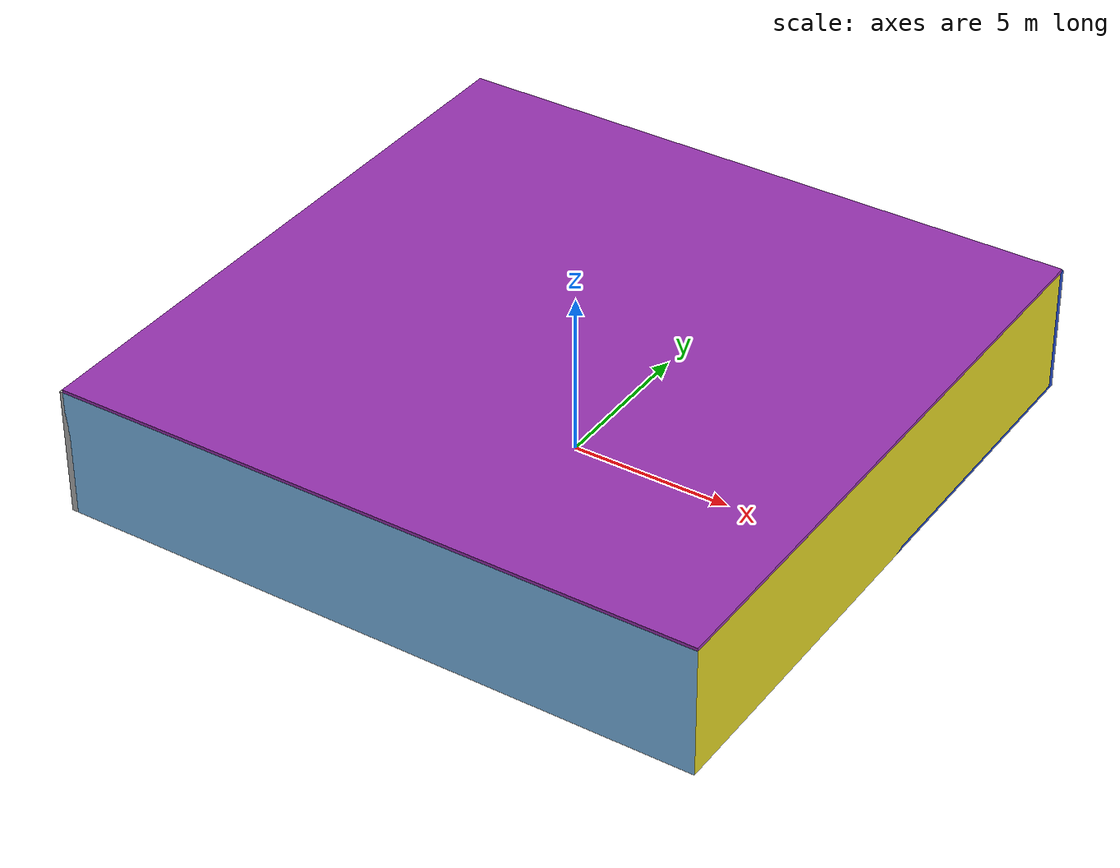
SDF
<sdf version="1.4">
 <world name="default">
  <physics type="ode">
   <max_step_size>0.001</max_step_size>
   <real_time_factor>1</real_time_factor>
   <real_time_update_rate>1000</real_time_update_rate>
   <gravity>0 0 -9.8</gravity>
  </physics>
  <scene><ambient>0.4 0.4 0.4 1</ambient><background>0.7 0.7 0.7 1</background><shadows>1</shadows></scene>
  <model name="Surrounding">
   <static>1</static>
   <link name="Ceiling">
    <collision name="Ceiling_Collision"><geometry><box><size>20 20 0.1</size></box></geometry></collision>
    <visual name="Ceiling_Visual">
     <geometry><box><size>20 20 0.1</size></box></geometry>
     <material>
      <script><uri>file://media/materials/scripts/gazebo.material</uri><name>Gazebo/Purple</name></script>
     </material>
    </visual>
    <pose>0 0 4.05 0 0 0</pose>
   </link>
   <link name="Wall_South">
    <collision name="Wall_South_Collision">
     <geometry><box><size>20 0 4</size></box></geometry>
     <pose>0 0 2 0 -0 0</pose>
    </collision>
    <visual name="Wall_South_Visual">
     <pose>0 0 2 0 -0 0</pose>
     <geometry><box><size>20 0 4</size></box></geometry>
     <material>
      <script><uri>file://media/materials/scripts/gazebo.material</uri><name>Gazebo/SkyBlue</name></script>
     </material>
    </visual>
    <velocity_decay><linear>0</linear><angular>0</angular></velocity_decay>
    <pose>0 -10 0 0 -0 0</pose>
   </link>
   <link name="Wall_East">
    <collision name="Wall_21_Collision">
     <geometry><box><size>20 0 4</size></box></geometry>
     <pose>0 0 2 0 -0 0</pose>
    </collision>
    <visual name="Wall_21_Visual">
     <pose>0 0 2 0 -0 0</pose>
     <geometry><box><size>20 0 4</size></box></geometry>
     <material>
      <script><uri>file://media/materials/scripts/gazebo.material</uri><name>Gazebo/Yellow</name></script>
     </material>
    </visual>
    <velocity_decay><linear>0</linear><angular>0</angular></velocity_decay>
    <pose>10 0 0 0 -0 1.5708</pose>
   </link>
   <link name="Wall_North">
    <collision name="Wall_22_Collision">
     <geometry><box><size>20 0.2 4</size></box></geometry>
     <pose>0 0 2 0 -0 0</pose>
    </collision>
    <visual name="Wall_22_Visual">
     <pose>0 0 2 0 -0 0</pose>
     <geometry><box><size>20 0.2 4</size></box></geometry>
     <material>
      <script><uri>file://media/materials/scripts/gazebo.material</uri><name>Gazebo/BlueLaser</name></script>
     </material>
    </visual>
    <velocity_decay><linear>0</linear><angular>0</angular></velocity_decay>
    <pose>0 10 0 0 -0 0</pose>
   </link>
   <link name="Wall_West">
    <collision name="Wall_23_Collision">
     <geometry><box><size>20 0.2 4</size></box></geometry>
     <pose>0 0 2 0 -0 0</pose>
    </collision>
    <visual name="Wall_23_Visual">
     <pose>0 0 2 0 -0 0</pose>
     <geometry><box><size>20 0.2 4</size></box></geometry>
     <material>
      <script><uri>file://media/materials/scripts/gazebo.material</uri><name>Gazebo/LightOn</name></script>
     </material>
    </visual>
    <velocity_decay><linear>0</linear><angular>0</angular></velocity_decay>
    <pose>-10 0 0 0 0 -1.5708</pose>
   </link>
   <link name="Ground_link">
    <collision name="collision">
     <pose>0 0 .05 0 -0 0</pose>
     <geometry><box><size>20 20 0.1</size></box></geometry>
    </collision>
    <visual name="visual">
     <pose>0 0 .05 0 -0 0</pose>
     <geometry><box><size>20 20 0.1</size></box></geometry>
     <material>
      <script><uri>file://media/materials/scripts/gazebo.material</uri><name>Gazebo/BlueLaser</name></script>
     </material>
    </visual>
   </link>
   <static>1</static>
  </model>
  <spherical_coordinates>
   <surface_model>EARTH_WGS84</surface_model>
   <latitude_deg>0</latitude_deg>
   <longitude_deg>0</longitude_deg>
   <elevation>0</elevation>
   <heading_deg>0</heading_deg>
  </spherical_coordinates>
  <light name="lightball_0" type="diffuse">
   <diffuse>0.8 0.8 0.8 1</diffuse>
   <specular>0.2 0.2 0.2 1</specular>
   <attenuation>
    <range>100</range>
    <constant>0.7</constant>
    <linear>0.01</linear>
    <quadratic>0.001</quadratic>
   </attenuation>
   <direction>-0.5 0.1 -0.9</direction>
   <pose>-2.87368865881 2.91507440798 1.59262430128 0 0 0</pose>
  </light>
  <light name="lightball_1" type="diffuse">
   <diffuse>0.8 0.8 0.8 1</diffuse>
   <specular>0.2 0.2 0.2 1</specular>
   <attenuation>
    <range>100</range>
    <constant>0.7</constant>
    <linear>0.01</linear>
    <quadratic>0.001</quadratic>
   </attenuation>
   <direction>-0.5 0.1 -0.9</direction>
   <pose>8.00006451938 -8.56302346824 3.84250607224 0 0 0</pose>
  </light>
  <light name="lightball_2" type="diffuse">
   <diffuse>0.8 0.8 0.8 1</diffuse>
   <specular>0.2 0.2 0.2 1</specular>
   <attenuation>
    <range>100</range>
    <constant>0.7</constant>
    <linear>0.01</linear>
    <quadratic>0.001</quadratic>
   </attenuation>
   <direction>-0.5 0.1 -0.9</direction>
   <pose>-7.8350880898 1.22687457758 1.59131712503 0 0 0</pose>
  </light>
  <light name="lightball_3" type="diffuse">
   <diffuse>0.8 0.8 0.8 1</diffuse>
   <specular>0.2 0.2 0.2 1</specular>
   <attenuation>
    <range>100</range>
    <constant>0.7</constant>
    <linear>0.01</linear>
    <quadratic>0.001</quadratic>
   </attenuation>
   <direction>-0.5 0.1 -0.9</direction>
   <pose>-0.689237653658 -3.91569123773 2.92602505002 0 0 0</pose>
  </light>
  <include>
   <uri>model://construction_cone</uri>
   <pose>-7.89906862254 5.08266732561 0 0 0 1.98685812349</pose>
  </include>
  <include>
   <uri>model://construction_cone</uri>
   <pose>-3.81260229939 4.35963176644 0 0 0 2.2660594048</pose>
  </include>
  <include>
   <uri>model://robocup_3Dsim_goal</uri>
   <pose>-1.95030347238 6.79208338873 0 0 0 0.755767472896</pose>
  </include>
  <include><uri>model://cabinet</uri><pose>4.58661553269 5.02852113062 0 0 0 0.30124560935</pose></include>
 </world>
</sdf>

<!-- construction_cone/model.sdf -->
<sdf version="1.5">
  <model name="Construction Cone">
    <link name="link">
      <collision name="collision">
        <geometry>
          <mesh>
            <scale>10 10 10</scale>
            <uri>file://isr-testbed/construction_cone/meshes/construction_cone.dae</uri>
          </mesh>
        </geometry>
      </collision>
      <visual name="visual">
        <geometry>
          <mesh>
            <scale>10 10 10</scale>
            <uri>file://isr-testbed/construction_cone/meshes/construction_cone.dae</uri>
          </mesh>
        </geometry>
      </visual>
    </link>
  </model>
</sdf>

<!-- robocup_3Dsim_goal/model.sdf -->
<sdf version="1.5">
  <model name="robocup_3d_goal">
    <static>true</static>
    <link name="left_post">
      <pose>0 1.05 0.45 0 0 0</pose>
      <collision name="collision">
        <geometry>
          <cylinder>
            <radius>0.05</radius>
            <length>0.9</length>
          </cylinder>
        </geometry>
      </collision>
      <visual name="visual">
        <geometry>
          <cylinder>
            <radius>0.05</radius>
            <length>0.9</length>
          </cylinder>
        </geometry>
        <material>
          <script>
            <uri>file://media/materials/scripts/gazebo.material</uri>
            <name>Gazebo/ZincYellow</name>
          </script>
        </material>
      </visual>
    </link>
    <link name="left_support_horiz_lower">
      <pose>0.30 1.05 0.01 0 0 0</pose>
      <collision name="collision">
        <geometry>
          <box>
            <size>0.50 0.02 0.02</size>
          </box>
        </geometry>
      </collision>
      <visual name="visual">
        <geometry>
          <box>
            <size>0.50 0.02 0.02</size>
          </box>
        </geometry>
        <material>
          <script>
            <uri>file://media/materials/scripts/gazebo.material</uri>
            <name>Gazebo/White</name>
          </script>
        </material>
      </visual>
    </link>
    <link name="left_support_horiz_upper">
      <pose>0.30 1.05 0.79 0 0 0</pose>
      <collision name="collision">
        <geometry>
          <box>
            <size>0.50 0.02 0.02</size>
          </box>
        </geometry>
      </collision>
      <visual name="visual">
        <geometry>
          <box>
            <size>0.50 0.02 0.02</size>
          </box>
        </geometry>
        <material>
          <script>
            <uri>file://media/materials/scripts/gazebo.material</uri>
            <name>Gazebo/White</name>
          </script>
        </material>
      </visual>
    </link>
    <link name="left_support_vertical">
      <pose>0.56 1.05 0.4 0 1.5708 0</pose>
      <collision name="collision">
        <geometry>
          <box>
            <size>0.80 0.02 0.02</size>
          </box>
        </geometry>
      </collision>
      <visual name="visual">
        <geometry>
          <box>
            <size>0.80 0.02 0.02</size>
          </box>
        </geometry>
        <material>
          <script>
            <uri>file://media/materials/scripts/gazebo.material</uri>
            <name>Gazebo/White</name>
          </script>
        </material>
      </visual>
    </link>
    <link name="right_support_horiz_lower">
      <pose>0.30 -1.05 0.01 0 0 0</pose>
      <collision name="collision">
        <geometry>
          <box>
            <size>0.50 0.02 0.02</size>
          </box>
        </geometry>
      </collision>
      <visual name="visual">
        <geometry>
          <box>
            <size>0.50 0.02 0.02</size>
          </box>
        </geometry>
        <material>
          <script>
            <uri>file://media/materials/scripts/gazebo.material</uri>
            <name>Gazebo/White</name>
          </script>
        </material>
      </visual>
    </link>
    <link name="right_support_horiz_upper">
      <pose>0.30 -1.05 0.79 0 0 0</pose>
      <collision name="collision">
        <geometry>
          <box>
            <size>0.50 0.02 0.02</size>
          </box>
        </geometry>
      </collision>
      <visual name="visual">
        <geometry>
          <box>
            <size>0.50 0.02 0.02</size>
          </box>
        </geometry>
        <material>
          <script>
            <uri>file://media/materials/scripts/gazebo.material</uri>
            <name>Gazebo/White</name>
          </script>
        </material>
      </visual>
    </link>
    <link name="right_support_vertical">
      <pose>0.56 -1.05 0.4 0 1.5708 0</pose>
      <collision name="collision">
        <geometry>
          <box>
            <size>0.80 0.02 0.02</size>
          </box>
        </geometry>
      </collision>
      <visual name="visual">
        <geometry>
          <box>
            <size>0.80 0.02 0.02</size>
          </box>
        </geometry>
        <material>
          <script>
            <uri>file://media/materials/scripts/gazebo.material</uri>
            <name>Gazebo/White</name>
          </script>
        </material>
      </visual>
    </link>
    <link name="center_support_horiz_lower">
      <pose>0.56 0 0.01 0 1.5708 0</pose>
      <collision name="collision">
        <geometry>
          <box>
            <size>0.02 2.08 0.02</size>
          </box>
        </geometry>
      </collision>
      <visual name="visual">
        <geometry>
          <box>
            <size>0.02 2.08 0.02</size>
          </box>
        </geometry>
        <material>
          <script>
            <uri>file://media/materials/scripts/gazebo.material</uri>
            <name>Gazebo/White</name>
          </script>
        </material>
      </visual>
    </link>
    <link name="center_support_horiz_upper">
      <pose>0.56 0 0.79 0 1.5708 0</pose>
      <collision name="collision">
        <geometry>
          <box>
            <size>0.02 2.08 0.02</size>
          </box>
        </geometry>
      </collision>
      <visual name="visual">
        <geometry>
          <box>
            <size>0.02 2.08 0.02</size>
          </box>
        </geometry>
        <material>
          <script>
            <uri>file://media/materials/scripts/gazebo.material</uri>
            <name>Gazebo/White</name>
          </script>
        </material>
      </visual>
    </link>
    <link name="right_post">
      <pose>0 -1.05 0.45 0 0 0</pose>
      <collision name="collision">
        <geometry>
          <cylinder>
            <radius>0.05</radius>
            <length>0.9</length>
          </cylinder>
        </geometry>
      </collision>
      <visual name="visual">
        <geometry>
          <cylinder>
            <radius>0.05</radius>
            <length>0.9</length>
          </cylinder>
        </geometry>
        <material>
          <script>
            <uri>file://media/materials/scripts/gazebo.material</uri>
            <name>Gazebo/ZincYellow</name>
          </script>
        </material>
      </visual>
    </link>
    <link name="crossbar">
      <pose>0 0 0.85 1.57 1.57 0</pose>
      <collision name="collision">
        <geometry>
          <cylinder>
            <radius>0.05</radius>
            <length>2.0</length>
          </cylinder>
        </geometry>
      </collision>
      <visual name="visual">
        <geometry>
          <cylinder>
            <radius>0.05</radius>
            <length>2.0</length>
          </cylinder>
        </geometry>
        <material>
          <script>
            <uri>file://media/materials/scripts/gazebo.material</uri>
            <name>Gazebo/ZincYellow</name>
          </script>
        </material>
      </visual>
    </link>
    <link name="center_net">
      <pose>0.56 0 0.40 0 0 0</pose>
      <collision name="collision">
        <geometry>
          <box>
            <size>0.01 2.1 0.80</size>
          </box>
        </geometry>
      </collision>
      <visual name="visual">
        <geometry>
          <box>
            <size>0.01 2.1 0.80</size>
          </box>
        </geometry>
        <material>
          <script>
            <uri>model://../model_source/models/robocup09_spl_field/materials/scripts/</uri>
            <uri>model://../model_source/models/robocup09_spl_field/materials/textures/</uri>
            <name>RoboCup/Net</name>
          </script>
        </material>
      </visual>
    </link>
    <link name="left_net">
      <pose>0.30 1.05 0.40 0 0 0</pose>
      <collision name="collision">
        <geometry>
          <box>
            <size>0.50 0.01 0.76</size>
          </box>
        </geometry>
      </collision>
      <visual name="visual">
        <geometry>
          <box>
            <size>0.50 0.01 0.76</size>
          </box>
        </geometry>
        <material>
          <script>
            <uri>model://../model_source/models/robocup09_spl_field/materials/scripts/</uri>
            <uri>model://../model_source/models/robocup09_spl_field/materials/textures/</uri>
            <name>RoboCup/Net</name>
          </script>
        </material>
      </visual>
    </link>
    <link name="right_net">
      <pose>0.30 -1.05 0.40 0 0 0</pose>
      <collision name="collision">
        <geometry>
          <box>
            <size>0.50 0.01 0.76</size>
          </box>
        </geometry>
      </collision>
      <visual name="visual">
        <geometry>
          <box>
            <size>0.50 0.01 0.76</size>
          </box>
        </geometry>
        <material>
          <script>
            <uri>model://../model_source/models/robocup09_spl_field/materials/scripts/</uri>
            <uri>model://../model_source/models/robocup09_spl_field/materials/textures/</uri>
            <name>RoboCup/Net</name>
          </script>
        </material>
      </visual>
    </link>
  </model>
</sdf>

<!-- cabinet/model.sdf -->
<sdf version="1.5">
  <model name="cabinet">
    <static>true</static>
    <link name="cabinet_bottom_plate">
      <inertial>
        <pose>0 0 -1 0 0 0</pose>
        <inertia>
          <ixx>2.050000</ixx>
          <ixy>0</ixy>
          <ixz>0</ixz>
          <iyy>2.050000</iyy>
          <iyz>0</iyz>
          <izz>2.050000</izz>
        </inertia>
        <mass>25.000000</mass>
      </inertial>
      <collision name="cabinet_bottom_plate_geom">
        <pose>0 0 0.010000 0 0 0</pose>
        <geometry>
          <box>
            <size>0.450000 0.450000 0.020000</size>
          </box>
        </geometry>
      </collision>
      <visual name="cabinet_bottom_plate_geom_visual">
        <pose>0 0 0.010000 0 0 0</pose>
        <geometry>
          <box>
            <size>0.450000 0.450000 0.020000</size>
          </box>
        </geometry>
        <material>
          <script>
            <uri>model://media/materials/scripts/gazebo.material</uri>
            <name>Gazebo/Wood</name>
          </script>
        </material>
      </visual>
      <collision name="cabinet_bottom_plate_geom_cabinet_back_plate">
        <pose>0.235000 0 0.510000 0 0 0</pose>
        <geometry>
          <box>
            <size>0.020000 0.450000 1.020000</size>
          </box>
        </geometry>
      </collision>
      <visual name="cabinet_bottom_plate_geom_cabinet_back_plate_visual">
        <pose>0.235000 0 0.510000 0 0 0</pose>
        <geometry>
          <box>
            <size>0.020000 0.450000 1.020000</size>
          </box>
        </geometry>
        <material>
          <script>
            <uri>model://media/materials/scripts/gazebo.material</uri>
            <name>Gazebo/Wood</name>
          </script>
        </material>
      </visual>
      <collision name="cabinet_bottom_plate_geom_cabinet_left_plate">
        <pose>0 0.235000 0.510000 0 0 0</pose>
        <geometry>
          <box>
            <size>0.450000 0.020000 1.020000</size>
          </box>
        </geometry>
      </collision>
      <visual name="cabinet_bottom_plate_geom_cabinet_left_plate_visual">
        <pose>0 0.235000 0.510000 0 0 0</pose>
        <geometry>
          <box>
            <size>0.450000 0.020000 1.020000</size>
          </box>
        </geometry>
        <material>
          <script>
            <uri>model://media/materials/scripts/gazebo.material</uri>
            <name>Gazebo/Wood</name>
          </script>
        </material>
      </visual>
      <collision name="cabinet_bottom_plate_geom_cabinet_middle_plate">
        <pose>0 0 0.510000 0 0 0</pose>
        <geometry>
          <box>
            <size>0.450000 0.450000 0.020000</size>
          </box>
        </geometry>
      </collision>
      <visual name="cabinet_bottom_plate_geom_cabinet_middle_plate_visual">
        <pose>0 0 0.510000 0 0 0</pose>
        <geometry>
          <box>
            <size>0.450000 0.450000 0.020000</size>
          </box>
        </geometry>
        <material>
          <script>
            <uri>model://media/materials/scripts/gazebo.material</uri>
            <name>Gazebo/Wood</name>
          </script>
        </material>
      </visual>
      <collision name="cabinet_bottom_plate_geom_cabinet_right_plate">
        <pose>0 -0.235000 0.510000 0 0 0</pose>
        <geometry>
          <box>
            <size>0.450000 0.020000 1.020000</size>
          </box>
        </geometry>
      </collision>
      <visual name="cabinet_bottom_plate_geom_cabinet_right_plate_visual">
        <pose>0 -0.235000 0.510000 0 0 0</pose>
        <geometry>
          <box>
            <size>0.450000 0.020000 1.020000</size>
          </box>
        </geometry>
        <material>
          <script>
            <uri>model://media/materials/scripts/gazebo.material</uri>
            <name>Gazebo/Wood</name>
          </script>
        </material>
      </visual>
      <collision name="cabinet_bottom_plate_geom_cabinet_top_plate">
        <pose>0 0 1.010000 0 0 0</pose>
        <geometry>
          <box>
            <size>0.450000 0.450000 0.020000</size>
          </box>
        </geometry>
      </collision>
      <visual name="cabinet_bottom_plate_geom_cabinet_top_plate_visual">
        <pose>0 0 1.010000 0 0 0</pose>
        <geometry>
          <box>
            <size>0.450000 0.450000 0.020000</size>
          </box>
        </geometry>
        <material>
          <script>
            <uri>model://media/materials/scripts/gazebo.material</uri>
            <name>Gazebo/Wood</name>
          </script>
        </material>
      </visual>
    </link>
  </model>
</sdf>
